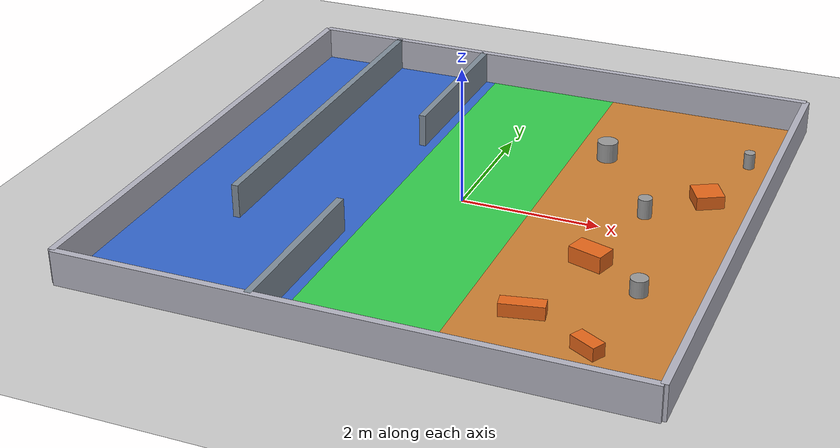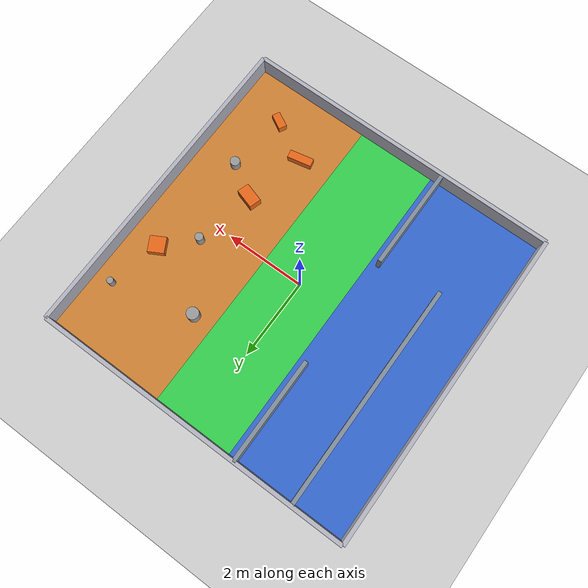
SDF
<?xml version="1.0" ?>
<sdf version="1.8">
  <world name="usar_arena">
    <plugin filename="libignition-gazebo-physics-system.so" name="ignition::gazebo::systems::Physics"></plugin>
    <plugin filename="libignition-gazebo-user-commands-system.so" name="ignition::gazebo::systems::UserCommands"></plugin>
    <plugin filename="libignition-gazebo-scene-broadcaster-system.so" name="ignition::gazebo::systems::SceneBroadcaster"></plugin>
    <plugin filename="libignition-gazebo-sensors-system.so" name="ignition::gazebo::systems::Sensors">
      <render_engine>ogre2</render_engine>
    </plugin>

    <scene>
      <ambient>0.8 0.8 0.8 1</ambient>
      <background>0.7 0.7 0.7 1</background>
      <shadows>true</shadows>
    </scene>

    <light type="directional" name="sun">
      <cast_shadows>true</cast_shadows>
      <pose>0 0 10 0 0 0</pose>
      <diffuse>0.6 0.6 0.6 1</diffuse>
      <specular>0.2 0.2 0.2 1</specular>
      <direction>-0.5 0.3 -0.8</direction>
    </light>

    <model name="ground_plane">
      <static>true</static>
      <link name="link">
        <collision name="ground_col">
          <geometry>
            <plane>
              <normal>0 0 1</normal>
              <size>8 8</size>
            </plane>
          </geometry>
        </collision>
        <visual name="ground_vis">
          <geometry>
            <plane>
              <normal>0 0 1</normal>
              <size>8 8</size>
            </plane>
          </geometry>
          <material>
            <ambient>0.8 0.8 0.8 1</ambient>
            <diffuse>0.8 0.8 0.8 1</diffuse>
            <pbr>
              <metal>
                <albedo_color>0.8 0.8 0.8 1</albedo_color>
                <roughness>0.9</roughness>
                <metalness>0.0</metalness>
              </metal>
            </pbr>
          </material>
        </visual>
      </link>
    </model>

    <!-- PERIMETER WALLS (8x8 meters)               -->
    <model name="perimeter">
      <static>true</static>
      <link name="wall_n">
        <pose>0 4 0.25 0 0 0</pose>
        <collision name="col_n">
          <geometry>
            <box>
              <size>8 0.1 0.5</size>
            </box>
          </geometry>
        </collision>
        <visual name="vis_n">
          <geometry>
            <box>
              <size>8 0.1 0.5</size>
            </box>
          </geometry>
          <material>
            <ambient>0.7 0.7 0.75 1</ambient>
            <diffuse>0.7 0.7 0.75 1</diffuse>
            <pbr>
              <metal>
                <albedo_color>0.7 0.7 0.75 1</albedo_color>
                <roughness>0.8</roughness>
                <metalness>0.0</metalness>
              </metal>
            </pbr>
          </material>
        </visual>
      </link>
      <link name="wall_s">
        <pose>0 -4 0.25 0 0 0</pose>
        <collision name="col_s">
          <geometry>
            <box>
              <size>8 0.1 0.5</size>
            </box>
          </geometry>
        </collision>
        <visual name="vis_s">
          <geometry>
            <box>
              <size>8 0.1 0.5</size>
            </box>
          </geometry>
          <material>
            <ambient>0.7 0.7 0.75 1</ambient>
            <diffuse>0.7 0.7 0.75 1</diffuse>
            <pbr>
              <metal>
                <albedo_color>0.7 0.7 0.75 1</albedo_color>
                <roughness>0.8</roughness>
                <metalness>0.0</metalness>
              </metal>
            </pbr>
          </material>
        </visual>
      </link>
      <link name="wall_e">
        <pose>4 0 0.25 0 0 0</pose>
        <collision name="col_e">
          <geometry>
            <box>
              <size>0.1 8 0.5</size>
            </box>
          </geometry>
        </collision>
        <visual name="vis_e">
          <geometry>
            <box>
              <size>0.1 8 0.5</size>
            </box>
          </geometry>
          <material>
            <ambient>0.7 0.7 0.75 1</ambient>
            <diffuse>0.7 0.7 0.75 1</diffuse>
            <pbr>
              <metal>
                <albedo_color>0.7 0.7 0.75 1</albedo_color>
                <roughness>0.8</roughness>
                <metalness>0.0</metalness>
              </metal>
            </pbr>
          </material>
        </visual>
      </link>
      <link name="wall_w">
        <pose>-4 0 0.25 0 0 0</pose>
        <collision name="col_w">
          <geometry>
            <box>
              <size>0.1 8 0.5</size>
            </box>
          </geometry>
        </collision>
        <visual name="vis_w">
          <geometry>
            <box>
              <size>0.1 8 0.5</size>
            </box>
          </geometry>
          <material>
            <ambient>0.7 0.7 0.75 1</ambient>
            <diffuse>0.7 0.7 0.75 1</diffuse>
            <pbr>
              <metal>
                <albedo_color>0.7 0.7 0.75 1</albedo_color>
                <roughness>0.8</roughness>
                <metalness>0.0</metalness>
              </metal>
            </pbr>
          </material>
        </visual>
      </link>
    </model>

    <!-- ZONES FLOORS                               -->
    <model name="floor_zones">
      <static>true</static>

      <!-- Maze Zone Floor -->
      <link name="maze_zone">
        <pose>-2.5 0 0.005 0 0 0</pose>
        <collision name="maze_col">
          <geometry>
            <box>
              <size>3 8 0.01</size>
            </box>
          </geometry>
        </collision>
        <visual name="maze_vis">
          <geometry>
            <box>
              <size>3 8 0.01</size>
            </box>
          </geometry>
          <material>
            <ambient>0.2 0.4 0.8 1</ambient>
            <diffuse>0.2 0.4 0.8 1</diffuse>
            <pbr>
              <metal>
                <albedo_color>0.2 0.4 0.8 1</albedo_color>
                <roughness>0.9</roughness>
                <metalness>0.0</metalness>
              </metal>
            </pbr>
          </material>
        </visual>
      </link>

      <!-- Safe Zone Floor -->
      <link name="safe_zone">
        <pose>0 0 0.005 0 0 0</pose>
        <collision name="safe_col">
          <geometry>
            <box>
              <size>2 8 0.01</size>
            </box>
          </geometry>
        </collision>
        <visual name="safe_vis">
          <geometry>
            <box>
              <size>2 8 0.01</size>
            </box>
          </geometry>
          <material>
            <ambient>0.2 0.8 0.3 1</ambient>
            <diffuse>0.2 0.8 0.3 1</diffuse>
            <pbr>
              <metal>
                <albedo_color>0.2 0.8 0.3 1</albedo_color>
                <roughness>0.9</roughness>
                <metalness>0.0</metalness>
              </metal>
            </pbr>
          </material>
        </visual>
      </link>

      <!-- Debris Zone Floor -->
      <link name="gravel_zone">
        <pose>2.5 0 0.005 0 0 0</pose>
        <collision name="gravel_col">
          <geometry>
            <box>
              <size>3 8 0.01</size>
            </box>
          </geometry>
          <surface>
            <friction>
              <ode>
                <mu>1.0</mu>
                <mu2>1.0</mu2>
              </ode>
            </friction>
          </surface>
        </collision>
        <visual name="gravel_vis">
          <geometry>
            <box>
              <size>3 8 0.01</size>
            </box>
          </geometry>
          <material>
            <ambient>0.8 0.5 0.2 1</ambient>
            <diffuse>0.8 0.5 0.2 1</diffuse>
            <pbr>
              <metal>
                <albedo_color>0.8 0.5 0.2 1</albedo_color>
                <roughness>0.9</roughness>
                <metalness>0.0</metalness>
              </metal>
            </pbr>
          </material>
        </visual>
      </link>
    </model>

    <!-- DEBRIS FIELD                               -->
    <model name="visual_rubble">
      <static>true</static>
      <!-- Rubble -->
      <link name="rubble_1">
        <pose>1.5 2.0 0.15 0 0 0</pose>
        <collision name="r1_c">
          <geometry>
            <cylinder>
              <radius>0.15</radius>
              <length>0.3</length>
            </cylinder>
          </geometry>
        </collision>
        <visual name="r1_v">
          <geometry>
            <cylinder>
              <radius>0.15</radius>
              <length>0.3</length>
            </cylinder>
          </geometry>
          <material>
            <ambient>0.6 0.6 0.6 1</ambient>
            <diffuse>0.6 0.6 0.6 1</diffuse>
            <pbr>
              <metal>
                <albedo_color>0.6 0.6 0.6 1</albedo_color>
                <roughness>0.8</roughness>
                <metalness>0.0</metalness>
              </metal>
            </pbr>
          </material>
        </visual>
      </link>
      <link name="rubble_2">
        <pose>3.0 -1.5 0.125 0 0 0</pose>
        <collision name="r2_c">
          <geometry>
            <cylinder>
              <radius>0.12</radius>
              <length>0.25</length>
            </cylinder>
          </geometry>
        </collision>
        <visual name="r2_v">
          <geometry>
            <cylinder>
              <radius>0.12</radius>
              <length>0.25</length>
            </cylinder>
          </geometry>
          <material>
            <ambient>0.6 0.6 0.6 1</ambient>
            <diffuse>0.6 0.6 0.6 1</diffuse>
            <pbr>
              <metal>
                <albedo_color>0.6 0.6 0.6 1</albedo_color>
                <roughness>0.8</roughness>
                <metalness>0.0</metalness>
              </metal>
            </pbr>
          </material>
        </visual>
      </link>
      <link name="rubble_3">
        <pose>2.5 0.5 0.15 0 0 0</pose>
        <collision name="r3_c">
          <geometry>
            <cylinder>
              <radius>0.1</radius>
              <length>0.3</length>
            </cylinder>
          </geometry>
        </collision>
        <visual name="r3_v">
          <geometry>
            <cylinder>
              <radius>0.1</radius>
              <length>0.3</length>
            </cylinder>
          </geometry>
          <material>
            <ambient>0.6 0.6 0.6 1</ambient>
            <diffuse>0.6 0.6 0.6 1</diffuse>
            <pbr>
              <metal>
                <albedo_color>0.6 0.6 0.6 1</albedo_color>
                <roughness>0.8</roughness>
                <metalness>0.0</metalness>
              </metal>
            </pbr>
          </material>
        </visual>
      </link>
      <link name="rubble_4">
        <pose>3.5 2.5 0.125 0 0 0</pose>
        <collision name="r4_c">
          <geometry>
            <cylinder>
              <radius>0.08</radius>
              <length>0.25</length>
            </cylinder>
          </geometry>
        </collision>
        <visual name="r4_v">
          <geometry>
            <cylinder>
              <radius>0.08</radius>
              <length>0.25</length>
            </cylinder>
          </geometry>
          <material>
            <ambient>0.6 0.6 0.6 1</ambient>
            <diffuse>0.6 0.6 0.6 1</diffuse>
            <pbr>
              <metal>
                <albedo_color>0.6 0.6 0.6 1</albedo_color>
                <roughness>0.8</roughness>
                <metalness>0.0</metalness>
              </metal>
            </pbr>
          </material>
        </visual>
      </link>

      <!-- Bricks -->
      <link name="brick_1">
        <pose>3.2 1.2 0.1 0 0 0.5</pose>
        <collision name="b1_c">
          <geometry>
            <box>
              <size>0.4 0.4 0.2</size>
            </box>
          </geometry>
        </collision>
        <visual name="b1_v">
          <geometry>
            <box>
              <size>0.4 0.4 0.2</size>
            </box>
          </geometry>
          <material>
            <ambient>0.9 0.4 0.1 1</ambient>
            <diffuse>0.9 0.4 0.1 1</diffuse>
            <pbr>
              <metal>
                <albedo_color>0.9 0.4 0.1 1</albedo_color>
                <roughness>0.9</roughness>
                <metalness>0.0</metalness>
              </metal>
            </pbr>
          </material>
        </visual>
      </link>
      <link name="brick_2">
        <pose>2.2 -1.0 0.125 0 0 -0.3</pose>
        <collision name="b2_c">
          <geometry>
            <box>
              <size>0.5 0.3 0.25</size>
            </box>
          </geometry>
        </collision>
        <visual name="b2_v">
          <geometry>
            <box>
              <size>0.5 0.3 0.25</size>
            </box>
          </geometry>
          <material>
            <ambient>0.9 0.4 0.1 1</ambient>
            <diffuse>0.9 0.4 0.1 1</diffuse>
            <pbr>
              <metal>
                <albedo_color>0.9 0.4 0.1 1</albedo_color>
                <roughness>0.9</roughness>
                <metalness>0.0</metalness>
              </metal>
            </pbr>
          </material>
        </visual>
      </link>
      <link name="brick_3">
        <pose>1.8 -2.5 0.1 0 0 0.2</pose>
        <collision name="b3_c">
          <geometry>
            <box>
              <size>0.6 0.2 0.2</size>
            </box>
          </geometry>
        </collision>
        <visual name="b3_v">
          <geometry>
            <box>
              <size>0.6 0.2 0.2</size>
            </box>
          </geometry>
          <material>
            <ambient>0.9 0.4 0.1 1</ambient>
            <diffuse>0.9 0.4 0.1 1</diffuse>
            <pbr>
              <metal>
                <albedo_color>0.9 0.4 0.1 1</albedo_color>
                <roughness>0.9</roughness>
                <metalness>0.0</metalness>
              </metal>
            </pbr>
          </material>
        </visual>
      </link>
      <link name="brick_4">
        <pose>2.8 -3.0 0.1 0 0 -0.5</pose>
        <collision name="b4_c">
          <geometry>
            <box>
              <size>0.4 0.2 0.2</size>
            </box>
          </geometry>
        </collision>
        <visual name="b4_v">
          <geometry>
            <box>
              <size>0.4 0.2 0.2</size>
            </box>
          </geometry>
          <material>
            <ambient>0.9 0.4 0.1 1</ambient>
            <diffuse>0.9 0.4 0.1 1</diffuse>
            <pbr>
              <metal>
                <albedo_color>0.9 0.4 0.1 1</albedo_color>
                <roughness>0.9</roughness>
                <metalness>0.0</metalness>
              </metal>
            </pbr>
          </material>
        </visual>
      </link>
    </model>

    <!-- COLLAPSED BUILDING MAZE                    -->
    <model name="building_maze">
      <static>true</static>

      <link name="baf1_top">
        <pose>-1.2 2.7 0.25 0 0 0</pose>
        <collision name="baf1t_c">
          <geometry>
            <box>
              <size>0.1 2.6 0.5</size>
            </box>
          </geometry>
        </collision>
        <visual name="baf1t_v">
          <geometry>
            <box>
              <size>0.1 2.6 0.5</size>
            </box>
          </geometry>
          <material>
            <ambient>0.4 0.45 0.5 1</ambient>
            <diffuse>0.5 0.55 0.6 1</diffuse>
          </material>
        </visual>
      </link>
      <link name="baf1_bot">
        <pose>-1.2 -2.7 0.25 0 0 0</pose>
        <collision name="baf1b_c">
          <geometry>
            <box>
              <size>0.1 2.6 0.5</size>
            </box>
          </geometry>
        </collision>
        <visual name="baf1b_v">
          <geometry>
            <box>
              <size>0.1 2.6 0.5</size>
            </box>
          </geometry>
          <material>
            <ambient>0.4 0.45 0.5 1</ambient>
            <diffuse>0.5 0.55 0.6 1</diffuse>
          </material>
        </visual>
      </link>

      <link name="baf2">
        <pose>-2.7 1.2 0.25 0 0 0</pose>
        <collision name="baf2_c">
          <geometry>
            <box>
              <size>0.1 5.6 0.5</size>
            </box>
          </geometry>
        </collision>
        <visual name="baf2_v">
          <geometry>
            <box>
              <size>0.1 5.6 0.5</size>
            </box>
          </geometry>
          <material>
            <ambient>0.4 0.45 0.5 1</ambient>
            <diffuse>0.5 0.55 0.6 1</diffuse>
          </material>
        </visual>
      </link>

    </model>
  </world>
</sdf>
